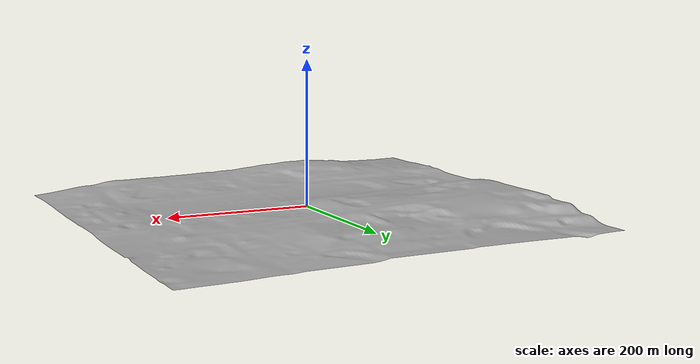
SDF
<?xml version="1.0"?>
<sdf version="1.9">
  <model name="umd_campus_terrain">
    <static>true</static>
    <link name="link">
      <collision name="collision">
        <geometry><mesh><uri>model://umd_campus_terrain/meshes/terrain.dae</uri></mesh></geometry>
        <surface><friction><ode/></friction><bounce/><contact/></surface>
      </collision>
      <visual name="visual">
        <geometry><mesh><uri>model://umd_campus_terrain/meshes/terrain.dae</uri></mesh></geometry>
      </visual>
    </link>
  </model>
</sdf>
